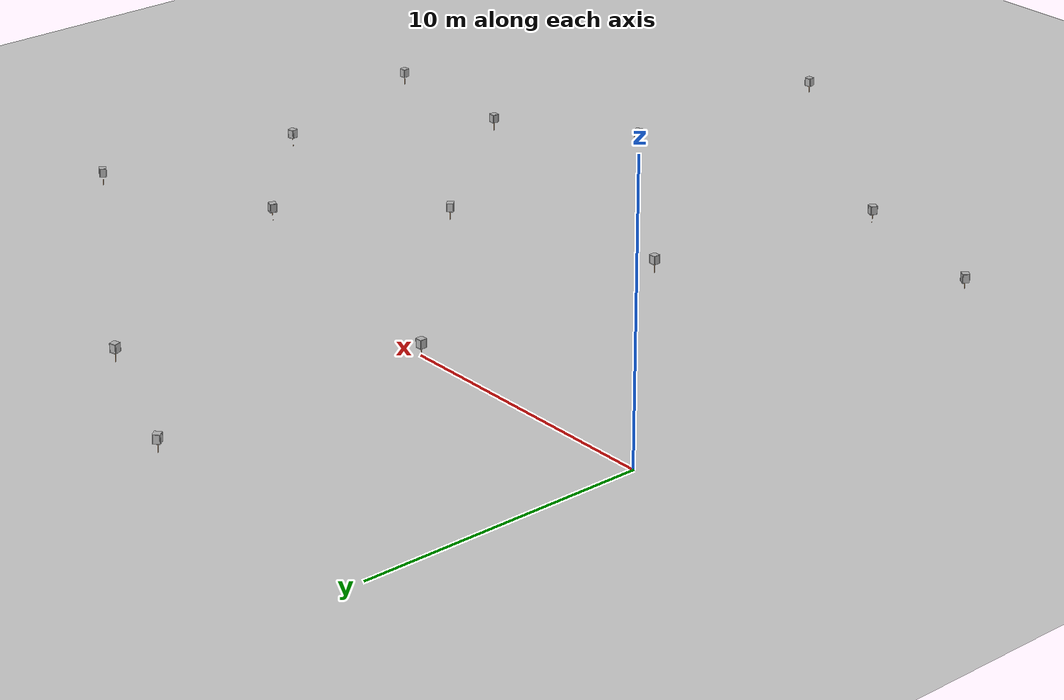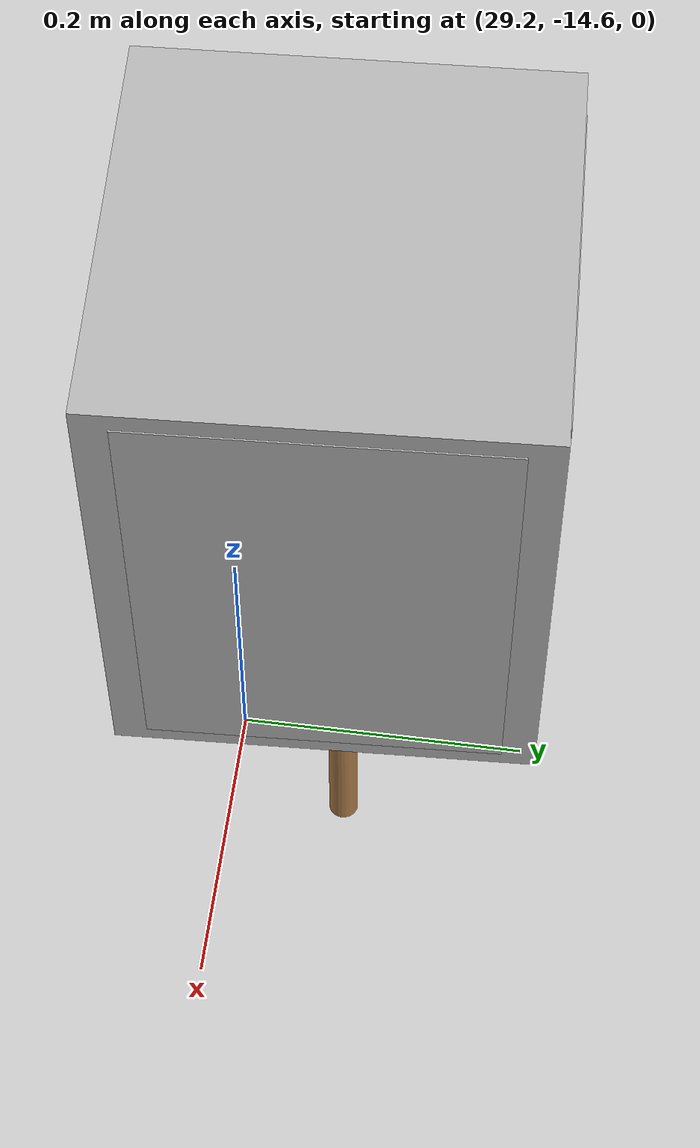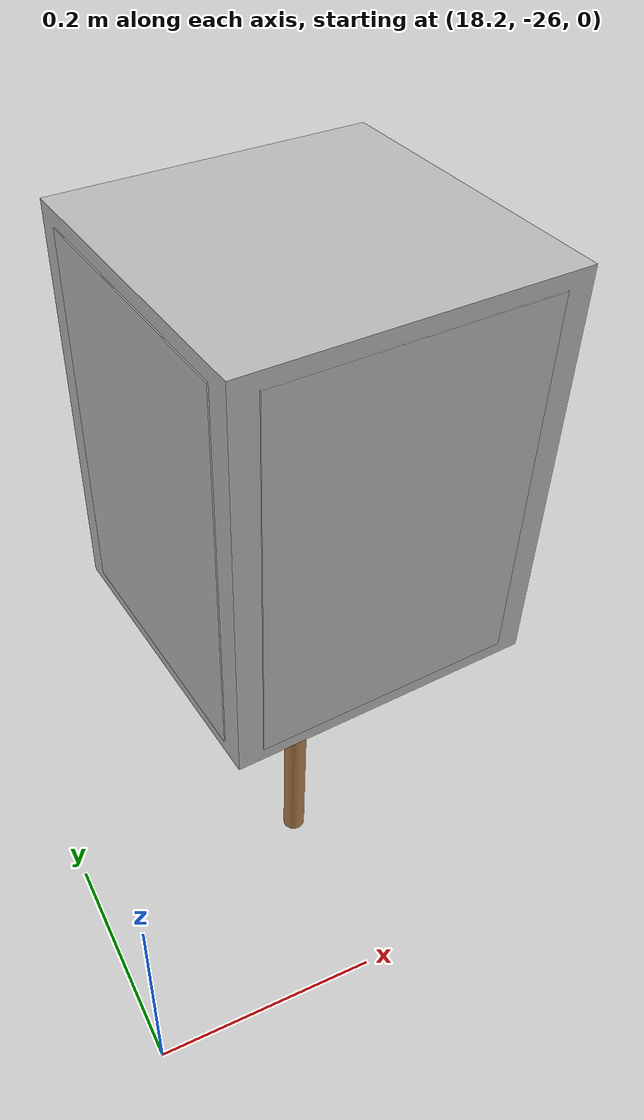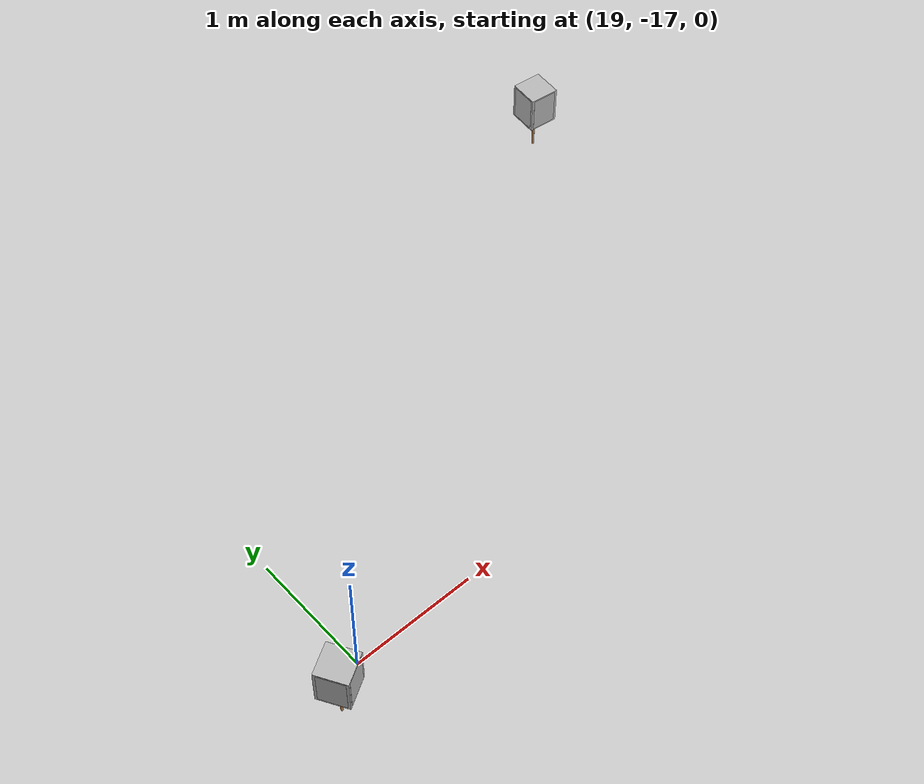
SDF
<?xml version="1.0" ?>
<!-- |    This document was autogenerated by xacro from marsyard2022.world.xacro       | -->
<!-- |    EDITING THIS FILE BY HAND IS NOT RECOMMENDED                                 | -->
<?xml-model href="http://sdformat.org/schemas/root.xsd" schematypens="http://www.w3.org/2001/XMLSchema"?>
<sdf version="1.9">
  <world name="marsyard2022">
    <physics type="ode">
      <ode>
        <solver>
          <!-- IMPORTANT for skid steering to properly work -->
          <friction_model>cone_model</friction_model>
          <island_threads>6</island_threads>
        </solver>
      </ode>
    </physics>
    <light name="sun" type="directional">
      <pose frame="">0 0 100 0 0 0.01</pose>
      <diffuse>1 1 1 1</diffuse>
      <specular>0.1 0.1 0.1 1</specular>
      <cast_shadows>1</cast_shadows>
      <direction>-0.2 -1.0 -1.0</direction>
    </light>
    <scene>
      <ambient>0.6 0.6 0.6 1.0</ambient>
      <sky>
        <clouds>
          <speed>12</speed>
        </clouds>
      </sky>
      <shadows>true</shadows>
      <origin_visual>false</origin_visual>
    </scene>
    <include>
      <uri>model://ground_plane</uri>
    </include>
    <model name="landmark1">
      <pose>10.0 0.0 0 0 0 0.0</pose>
      <static>true</static>
      <link name="landmark">
        <visual name="pole_visual">
          <pose>0 0 0.09999999999999999 0 0 0</pose>
          <geometry>
            <cylinder>
              <radius>0.01</radius>
              <length>0.4</length>
            </cylinder>
          </geometry>
          <material>
            <script>
              <name>Gazebo/Wood</name>
            </script>
          </material>
        </visual>
        <collision name="pole_collision">
          <pose>0 0 0.09999999999999999 0 0 0</pose>
          <geometry>
            <cylinder>
              <radius>0.01</radius>
              <length>0.4</length>
            </cylinder>
          </geometry>
        </collision>
        <visual name="box_visual">
          <pose>0 0 0.45999999999999996 0 0 0</pose>
          <geometry>
            <box>
              <size>0.25 0.25 0.32</size>
            </box>
          </geometry>
          <material>
            <script>
              <name>ERC_Landmark/Box</name>
            </script>
          </material>
        </visual>
        <collision name="box_collision">
          <pose>0 0 0.45999999999999996 0 0 0</pose>
          <geometry>
            <box>
              <size>0.25 0.25 0.32</size>
            </box>
          </geometry>
        </collision>
        <visual name="sheet1">
          <pose>0 0.1235 0.45999999999999996 0 0 0</pose>
          <geometry>
            <box>
              <size>0.21 0.005 0.297</size>
            </box>
          </geometry>
          <material>
            <script>
              <name>ERC_Landmark/1</name>
            </script>
          </material>
        </visual>
        <visual name="sheet2">
          <pose>0 -0.1235 0.45999999999999996 0 0 0</pose>
          <geometry>
            <box>
              <size>0.21 0.005 0.297</size>
            </box>
          </geometry>
          <material>
            <script>
              <name>ERC_Landmark/1</name>
            </script>
          </material>
        </visual>
        <visual name="sheet3">
          <pose>0.1235 0 0.45999999999999996 0 0 1.5707963267948966</pose>
          <geometry>
            <box>
              <size>0.21 0.005 0.297</size>
            </box>
          </geometry>
          <material>
            <script>
              <name>ERC_Landmark/1</name>
            </script>
          </material>
        </visual>
        <visual name="sheet4">
          <pose>-0.1235 0 0.45999999999999996 0 0 1.5707963267948966</pose>
          <geometry>
            <box>
              <size>0.21 0.005 0.297</size>
            </box>
          </geometry>
          <material>
            <script>
              <name>ERC_Landmark/1</name>
            </script>
          </material>
        </visual>
      </link>
    </model>
    <model name="landmark2">
      <pose>10.0 -10.0 0 0 0 0.0</pose>
      <static>true</static>
      <link name="landmark">
        <visual name="pole_visual">
          <pose>0 0 0.09999999999999999 0 0 0</pose>
          <geometry>
            <cylinder>
              <radius>0.01</radius>
              <length>0.4</length>
            </cylinder>
          </geometry>
          <material>
            <script>
              <name>Gazebo/Wood</name>
            </script>
          </material>
        </visual>
        <collision name="pole_collision">
          <pose>0 0 0.09999999999999999 0 0 0</pose>
          <geometry>
            <cylinder>
              <radius>0.01</radius>
              <length>0.4</length>
            </cylinder>
          </geometry>
        </collision>
        <visual name="box_visual">
          <pose>0 0 0.45999999999999996 0 0 0</pose>
          <geometry>
            <box>
              <size>0.25 0.25 0.32</size>
            </box>
          </geometry>
          <material>
            <script>
              <name>ERC_Landmark/Box</name>
            </script>
          </material>
        </visual>
        <collision name="box_collision">
          <pose>0 0 0.45999999999999996 0 0 0</pose>
          <geometry>
            <box>
              <size>0.25 0.25 0.32</size>
            </box>
          </geometry>
        </collision>
        <visual name="sheet1">
          <pose>0 0.1235 0.45999999999999996 0 0 0</pose>
          <geometry>
            <box>
              <size>0.21 0.005 0.297</size>
            </box>
          </geometry>
          <material>
            <script>
              <name>ERC_Landmark/2</name>
            </script>
          </material>
        </visual>
        <visual name="sheet2">
          <pose>0 -0.1235 0.45999999999999996 0 0 0</pose>
          <geometry>
            <box>
              <size>0.21 0.005 0.297</size>
            </box>
          </geometry>
          <material>
            <script>
              <name>ERC_Landmark/2</name>
            </script>
          </material>
        </visual>
        <visual name="sheet3">
          <pose>0.1235 0 0.45999999999999996 0 0 1.5707963267948966</pose>
          <geometry>
            <box>
              <size>0.21 0.005 0.297</size>
            </box>
          </geometry>
          <material>
            <script>
              <name>ERC_Landmark/2</name>
            </script>
          </material>
        </visual>
        <visual name="sheet4">
          <pose>-0.1235 0 0.45999999999999996 0 0 1.5707963267948966</pose>
          <geometry>
            <box>
              <size>0.21 0.005 0.297</size>
            </box>
          </geometry>
          <material>
            <script>
              <name>ERC_Landmark/2</name>
            </script>
          </material>
        </visual>
      </link>
    </model>
    <model name="landmark3">
      <pose>28.35 -0.04 0 0 0 -0.5</pose>
      <static>true</static>
      <link name="landmark">
        <visual name="pole_visual">
          <pose>0 0 0.09999999999999999 0 0 0</pose>
          <geometry>
            <cylinder>
              <radius>0.01</radius>
              <length>0.4</length>
            </cylinder>
          </geometry>
          <material>
            <script>
              <name>Gazebo/Wood</name>
            </script>
          </material>
        </visual>
        <collision name="pole_collision">
          <pose>0 0 0.09999999999999999 0 0 0</pose>
          <geometry>
            <cylinder>
              <radius>0.01</radius>
              <length>0.4</length>
            </cylinder>
          </geometry>
        </collision>
        <visual name="box_visual">
          <pose>0 0 0.45999999999999996 0 0 0</pose>
          <geometry>
            <box>
              <size>0.25 0.25 0.32</size>
            </box>
          </geometry>
          <material>
            <script>
              <name>ERC_Landmark/Box</name>
            </script>
          </material>
        </visual>
        <collision name="box_collision">
          <pose>0 0 0.45999999999999996 0 0 0</pose>
          <geometry>
            <box>
              <size>0.25 0.25 0.32</size>
            </box>
          </geometry>
        </collision>
        <visual name="sheet1">
          <pose>0 0.1235 0.45999999999999996 0 0 0</pose>
          <geometry>
            <box>
              <size>0.21 0.005 0.297</size>
            </box>
          </geometry>
          <material>
            <script>
              <name>ERC_Landmark/3</name>
            </script>
          </material>
        </visual>
        <visual name="sheet2">
          <pose>0 -0.1235 0.45999999999999996 0 0 0</pose>
          <geometry>
            <box>
              <size>0.21 0.005 0.297</size>
            </box>
          </geometry>
          <material>
            <script>
              <name>ERC_Landmark/3</name>
            </script>
          </material>
        </visual>
        <visual name="sheet3">
          <pose>0.1235 0 0.45999999999999996 0 0 1.5707963267948966</pose>
          <geometry>
            <box>
              <size>0.21 0.005 0.297</size>
            </box>
          </geometry>
          <material>
            <script>
              <name>ERC_Landmark/3</name>
            </script>
          </material>
        </visual>
        <visual name="sheet4">
          <pose>-0.1235 0 0.45999999999999996 0 0 1.5707963267948966</pose>
          <geometry>
            <box>
              <size>0.21 0.005 0.297</size>
            </box>
          </geometry>
          <material>
            <script>
              <name>ERC_Landmark/3</name>
            </script>
          </material>
        </visual>
      </link>
    </model>
    <model name="landmark4">
      <pose>21.83 -2.8 0 0 0 -0.29</pose>
      <static>true</static>
      <link name="landmark">
        <visual name="pole_visual">
          <pose>0 0 0.09999999999999999 0 0 0</pose>
          <geometry>
            <cylinder>
              <radius>0.01</radius>
              <length>0.4</length>
            </cylinder>
          </geometry>
          <material>
            <script>
              <name>Gazebo/Wood</name>
            </script>
          </material>
        </visual>
        <collision name="pole_collision">
          <pose>0 0 0.09999999999999999 0 0 0</pose>
          <geometry>
            <cylinder>
              <radius>0.01</radius>
              <length>0.4</length>
            </cylinder>
          </geometry>
        </collision>
        <visual name="box_visual">
          <pose>0 0 0.45999999999999996 0 0 0</pose>
          <geometry>
            <box>
              <size>0.25 0.25 0.32</size>
            </box>
          </geometry>
          <material>
            <script>
              <name>ERC_Landmark/Box</name>
            </script>
          </material>
        </visual>
        <collision name="box_collision">
          <pose>0 0 0.45999999999999996 0 0 0</pose>
          <geometry>
            <box>
              <size>0.25 0.25 0.32</size>
            </box>
          </geometry>
        </collision>
        <visual name="sheet1">
          <pose>0 0.1235 0.45999999999999996 0 0 0</pose>
          <geometry>
            <box>
              <size>0.21 0.005 0.297</size>
            </box>
          </geometry>
          <material>
            <script>
              <name>ERC_Landmark/4</name>
            </script>
          </material>
        </visual>
        <visual name="sheet2">
          <pose>0 -0.1235 0.45999999999999996 0 0 0</pose>
          <geometry>
            <box>
              <size>0.21 0.005 0.297</size>
            </box>
          </geometry>
          <material>
            <script>
              <name>ERC_Landmark/4</name>
            </script>
          </material>
        </visual>
        <visual name="sheet3">
          <pose>0.1235 0 0.45999999999999996 0 0 1.5707963267948966</pose>
          <geometry>
            <box>
              <size>0.21 0.005 0.297</size>
            </box>
          </geometry>
          <material>
            <script>
              <name>ERC_Landmark/4</name>
            </script>
          </material>
        </visual>
        <visual name="sheet4">
          <pose>-0.1235 0 0.45999999999999996 0 0 1.5707963267948966</pose>
          <geometry>
            <box>
              <size>0.21 0.005 0.297</size>
            </box>
          </geometry>
          <material>
            <script>
              <name>ERC_Landmark/4</name>
            </script>
          </material>
        </visual>
      </link>
    </model>
    <model name="landmark5">
      <pose>18.71 -17.19 0 0 0 0.53</pose>
      <static>true</static>
      <link name="landmark">
        <visual name="pole_visual">
          <pose>0 0 0.09999999999999999 0 0 0</pose>
          <geometry>
            <cylinder>
              <radius>0.01</radius>
              <length>0.4</length>
            </cylinder>
          </geometry>
          <material>
            <script>
              <name>Gazebo/Wood</name>
            </script>
          </material>
        </visual>
        <collision name="pole_collision">
          <pose>0 0 0.09999999999999999 0 0 0</pose>
          <geometry>
            <cylinder>
              <radius>0.01</radius>
              <length>0.4</length>
            </cylinder>
          </geometry>
        </collision>
        <visual name="box_visual">
          <pose>0 0 0.45999999999999996 0 0 0</pose>
          <geometry>
            <box>
              <size>0.25 0.25 0.32</size>
            </box>
          </geometry>
          <material>
            <script>
              <name>ERC_Landmark/Box</name>
            </script>
          </material>
        </visual>
        <collision name="box_collision">
          <pose>0 0 0.45999999999999996 0 0 0</pose>
          <geometry>
            <box>
              <size>0.25 0.25 0.32</size>
            </box>
          </geometry>
        </collision>
        <visual name="sheet1">
          <pose>0 0.1235 0.45999999999999996 0 0 0</pose>
          <geometry>
            <box>
              <size>0.21 0.005 0.297</size>
            </box>
          </geometry>
          <material>
            <script>
              <name>ERC_Landmark/5</name>
            </script>
          </material>
        </visual>
        <visual name="sheet2">
          <pose>0 -0.1235 0.45999999999999996 0 0 0</pose>
          <geometry>
            <box>
              <size>0.21 0.005 0.297</size>
            </box>
          </geometry>
          <material>
            <script>
              <name>ERC_Landmark/5</name>
            </script>
          </material>
        </visual>
        <visual name="sheet3">
          <pose>0.1235 0 0.45999999999999996 0 0 1.5707963267948966</pose>
          <geometry>
            <box>
              <size>0.21 0.005 0.297</size>
            </box>
          </geometry>
          <material>
            <script>
              <name>ERC_Landmark/5</name>
            </script>
          </material>
        </visual>
        <visual name="sheet4">
          <pose>-0.1235 0 0.45999999999999996 0 0 1.5707963267948966</pose>
          <geometry>
            <box>
              <size>0.21 0.005 0.297</size>
            </box>
          </geometry>
          <material>
            <script>
              <name>ERC_Landmark/5</name>
            </script>
          </material>
        </visual>
      </link>
    </model>
    <model name="landmark6">
      <pose>26.95 -7.44 0 0 0 -1.35</pose>
      <static>true</static>
      <link name="landmark">
        <visual name="pole_visual">
          <pose>0 0 0.09999999999999999 0 0 0</pose>
          <geometry>
            <cylinder>
              <radius>0.01</radius>
              <length>0.4</length>
            </cylinder>
          </geometry>
          <material>
            <script>
              <name>Gazebo/Wood</name>
            </script>
          </material>
        </visual>
        <collision name="pole_collision">
          <pose>0 0 0.09999999999999999 0 0 0</pose>
          <geometry>
            <cylinder>
              <radius>0.01</radius>
              <length>0.4</length>
            </cylinder>
          </geometry>
        </collision>
        <visual name="box_visual">
          <pose>0 0 0.45999999999999996 0 0 0</pose>
          <geometry>
            <box>
              <size>0.25 0.25 0.32</size>
            </box>
          </geometry>
          <material>
            <script>
              <name>ERC_Landmark/Box</name>
            </script>
          </material>
        </visual>
        <collision name="box_collision">
          <pose>0 0 0.45999999999999996 0 0 0</pose>
          <geometry>
            <box>
              <size>0.25 0.25 0.32</size>
            </box>
          </geometry>
        </collision>
        <visual name="sheet1">
          <pose>0 0.1235 0.45999999999999996 0 0 0</pose>
          <geometry>
            <box>
              <size>0.21 0.005 0.297</size>
            </box>
          </geometry>
          <material>
            <script>
              <name>ERC_Landmark/6</name>
            </script>
          </material>
        </visual>
        <visual name="sheet2">
          <pose>0 -0.1235 0.45999999999999996 0 0 0</pose>
          <geometry>
            <box>
              <size>0.21 0.005 0.297</size>
            </box>
          </geometry>
          <material>
            <script>
              <name>ERC_Landmark/6</name>
            </script>
          </material>
        </visual>
        <visual name="sheet3">
          <pose>0.1235 0 0.45999999999999996 0 0 1.5707963267948966</pose>
          <geometry>
            <box>
              <size>0.21 0.005 0.297</size>
            </box>
          </geometry>
          <material>
            <script>
              <name>ERC_Landmark/6</name>
            </script>
          </material>
        </visual>
        <visual name="sheet4">
          <pose>-0.1235 0 0.45999999999999996 0 0 1.5707963267948966</pose>
          <geometry>
            <box>
              <size>0.21 0.005 0.297</size>
            </box>
          </geometry>
          <material>
            <script>
              <name>ERC_Landmark/6</name>
            </script>
          </material>
        </visual>
      </link>
    </model>
    <model name="landmark7">
      <pose>15.97 7.57 0 0 0 -1.31</pose>
      <static>true</static>
      <link name="landmark">
        <visual name="pole_visual">
          <pose>0 0 0.09999999999999999 0 0 0</pose>
          <geometry>
            <cylinder>
              <radius>0.01</radius>
              <length>0.4</length>
            </cylinder>
          </geometry>
          <material>
            <script>
              <name>Gazebo/Wood</name>
            </script>
          </material>
        </visual>
        <collision name="pole_collision">
          <pose>0 0 0.09999999999999999 0 0 0</pose>
          <geometry>
            <cylinder>
              <radius>0.01</radius>
              <length>0.4</length>
            </cylinder>
          </geometry>
        </collision>
        <visual name="box_visual">
          <pose>0 0 0.45999999999999996 0 0 0</pose>
          <geometry>
            <box>
              <size>0.25 0.25 0.32</size>
            </box>
          </geometry>
          <material>
            <script>
              <name>ERC_Landmark/Box</name>
            </script>
          </material>
        </visual>
        <collision name="box_collision">
          <pose>0 0 0.45999999999999996 0 0 0</pose>
          <geometry>
            <box>
              <size>0.25 0.25 0.32</size>
            </box>
          </geometry>
        </collision>
        <visual name="sheet1">
          <pose>0 0.1235 0.45999999999999996 0 0 0</pose>
          <geometry>
            <box>
              <size>0.21 0.005 0.297</size>
            </box>
          </geometry>
          <material>
            <script>
              <name>ERC_Landmark/7</name>
            </script>
          </material>
        </visual>
        <visual name="sheet2">
          <pose>0 -0.1235 0.45999999999999996 0 0 0</pose>
          <geometry>
            <box>
              <size>0.21 0.005 0.297</size>
            </box>
          </geometry>
          <material>
            <script>
              <name>ERC_Landmark/7</name>
            </script>
          </material>
        </visual>
        <visual name="sheet3">
          <pose>0.1235 0 0.45999999999999996 0 0 1.5707963267948966</pose>
          <geometry>
            <box>
              <size>0.21 0.005 0.297</size>
            </box>
          </geometry>
          <material>
            <script>
              <name>ERC_Landmark/7</name>
            </script>
          </material>
        </visual>
        <visual name="sheet4">
          <pose>-0.1235 0 0.45999999999999996 0 0 1.5707963267948966</pose>
          <geometry>
            <box>
              <size>0.21 0.005 0.297</size>
            </box>
          </geometry>
          <material>
            <script>
              <name>ERC_Landmark/7</name>
            </script>
          </material>
        </visual>
      </link>
    </model>
    <model name="landmark8">
      <pose>17.87 -7.57 0 0 0 -0.79</pose>
      <static>true</static>
      <link name="landmark">
        <visual name="pole_visual">
          <pose>0 0 0.09999999999999999 0 0 0</pose>
          <geometry>
            <cylinder>
              <radius>0.01</radius>
              <length>0.4</length>
            </cylinder>
          </geometry>
          <material>
            <script>
              <name>Gazebo/Wood</name>
            </script>
          </material>
        </visual>
        <collision name="pole_collision">
          <pose>0 0 0.09999999999999999 0 0 0</pose>
          <geometry>
            <cylinder>
              <radius>0.01</radius>
              <length>0.4</length>
            </cylinder>
          </geometry>
        </collision>
        <visual name="box_visual">
          <pose>0 0 0.45999999999999996 0 0 0</pose>
          <geometry>
            <box>
              <size>0.25 0.25 0.32</size>
            </box>
          </geometry>
          <material>
            <script>
              <name>ERC_Landmark/Box</name>
            </script>
          </material>
        </visual>
        <collision name="box_collision">
          <pose>0 0 0.45999999999999996 0 0 0</pose>
          <geometry>
            <box>
              <size>0.25 0.25 0.32</size>
            </box>
          </geometry>
        </collision>
        <visual name="sheet1">
          <pose>0 0.1235 0.45999999999999996 0 0 0</pose>
          <geometry>
            <box>
              <size>0.21 0.005 0.297</size>
            </box>
          </geometry>
          <material>
            <script>
              <name>ERC_Landmark/8</name>
            </script>
          </material>
        </visual>
        <visual name="sheet2">
          <pose>0 -0.1235 0.45999999999999996 0 0 0</pose>
          <geometry>
            <box>
              <size>0.21 0.005 0.297</size>
            </box>
          </geometry>
          <material>
            <script>
              <name>ERC_Landmark/8</name>
            </script>
          </material>
        </visual>
        <visual name="sheet3">
          <pose>0.1235 0 0.45999999999999996 0 0 1.5707963267948966</pose>
          <geometry>
            <box>
              <size>0.21 0.005 0.297</size>
            </box>
          </geometry>
          <material>
            <script>
              <name>ERC_Landmark/8</name>
            </script>
          </material>
        </visual>
        <visual name="sheet4">
          <pose>-0.1235 0 0.45999999999999996 0 0 1.5707963267948966</pose>
          <geometry>
            <box>
              <size>0.21 0.005 0.297</size>
            </box>
          </geometry>
          <material>
            <script>
              <name>ERC_Landmark/8</name>
            </script>
          </material>
        </visual>
      </link>
    </model>
    <model name="landmark9">
      <pose>10.0 10.0 0 0 0 -0.9</pose>
      <static>true</static>
      <link name="landmark">
        <visual name="pole_visual">
          <pose>0 0 0.09999999999999999 0 0 0</pose>
          <geometry>
            <cylinder>
              <radius>0.01</radius>
              <length>0.4</length>
            </cylinder>
          </geometry>
          <material>
            <script>
              <name>Gazebo/Wood</name>
            </script>
          </material>
        </visual>
        <collision name="pole_collision">
          <pose>0 0 0.09999999999999999 0 0 0</pose>
          <geometry>
            <cylinder>
              <radius>0.01</radius>
              <length>0.4</length>
            </cylinder>
          </geometry>
        </collision>
        <visual name="box_visual">
          <pose>0 0 0.45999999999999996 0 0 0</pose>
          <geometry>
            <box>
              <size>0.25 0.25 0.32</size>
            </box>
          </geometry>
          <material>
            <script>
              <name>ERC_Landmark/Box</name>
            </script>
          </material>
        </visual>
        <collision name="box_collision">
          <pose>0 0 0.45999999999999996 0 0 0</pose>
          <geometry>
            <box>
              <size>0.25 0.25 0.32</size>
            </box>
          </geometry>
        </collision>
        <visual name="sheet1">
          <pose>0 0.1235 0.45999999999999996 0 0 0</pose>
          <geometry>
            <box>
              <size>0.21 0.005 0.297</size>
            </box>
          </geometry>
          <material>
            <script>
              <name>ERC_Landmark/9</name>
            </script>
          </material>
        </visual>
        <visual name="sheet2">
          <pose>0 -0.1235 0.45999999999999996 0 0 0</pose>
          <geometry>
            <box>
              <size>0.21 0.005 0.297</size>
            </box>
          </geometry>
          <material>
            <script>
              <name>ERC_Landmark/9</name>
            </script>
          </material>
        </visual>
        <visual name="sheet3">
          <pose>0.1235 0 0.45999999999999996 0 0 1.5707963267948966</pose>
          <geometry>
            <box>
              <size>0.21 0.005 0.297</size>
            </box>
          </geometry>
          <material>
            <script>
              <name>ERC_Landmark/9</name>
            </script>
          </material>
        </visual>
        <visual name="sheet4">
          <pose>-0.1235 0 0.45999999999999996 0 0 1.5707963267948966</pose>
          <geometry>
            <box>
              <size>0.21 0.005 0.297</size>
            </box>
          </geometry>
          <material>
            <script>
              <name>ERC_Landmark/9</name>
            </script>
          </material>
        </visual>
      </link>
    </model>
    <model name="landmark10">
      <pose>29.26 -14.52 0 0 0 -1.52</pose>
      <static>true</static>
      <link name="landmark">
        <visual name="pole_visual">
          <pose>0 0 0.09999999999999999 0 0 0</pose>
          <geometry>
            <cylinder>
              <radius>0.01</radius>
              <length>0.4</length>
            </cylinder>
          </geometry>
          <material>
            <script>
              <name>Gazebo/Wood</name>
            </script>
          </material>
        </visual>
        <collision name="pole_collision">
          <pose>0 0 0.09999999999999999 0 0 0</pose>
          <geometry>
            <cylinder>
              <radius>0.01</radius>
              <length>0.4</length>
            </cylinder>
          </geometry>
        </collision>
        <visual name="box_visual">
          <pose>0 0 0.45999999999999996 0 0 0</pose>
          <geometry>
            <box>
              <size>0.25 0.25 0.32</size>
            </box>
          </geometry>
          <material>
            <script>
              <name>ERC_Landmark/Box</name>
            </script>
          </material>
        </visual>
        <collision name="box_collision">
          <pose>0 0 0.45999999999999996 0 0 0</pose>
          <geometry>
            <box>
              <size>0.25 0.25 0.32</size>
            </box>
          </geometry>
        </collision>
        <visual name="sheet1">
          <pose>0 0.1235 0.45999999999999996 0 0 0</pose>
          <geometry>
            <box>
              <size>0.21 0.005 0.297</size>
            </box>
          </geometry>
          <material>
            <script>
              <name>ERC_Landmark/10</name>
            </script>
          </material>
        </visual>
        <visual name="sheet2">
          <pose>0 -0.1235 0.45999999999999996 0 0 0</pose>
          <geometry>
            <box>
              <size>0.21 0.005 0.297</size>
            </box>
          </geometry>
          <material>
            <script>
              <name>ERC_Landmark/10</name>
            </script>
          </material>
        </visual>
        <visual name="sheet3">
          <pose>0.1235 0 0.45999999999999996 0 0 1.5707963267948966</pose>
          <geometry>
            <box>
              <size>0.21 0.005 0.297</size>
            </box>
          </geometry>
          <material>
            <script>
              <name>ERC_Landmark/10</name>
            </script>
          </material>
        </visual>
        <visual name="sheet4">
          <pose>-0.1235 0 0.45999999999999996 0 0 1.5707963267948966</pose>
          <geometry>
            <box>
              <size>0.21 0.005 0.297</size>
            </box>
          </geometry>
          <material>
            <script>
              <name>ERC_Landmark/10</name>
            </script>
          </material>
        </visual>
      </link>
    </model>
    <model name="landmark11">
      <pose>18.41 -25.83 0 0 0 0.08</pose>
      <static>true</static>
      <link name="landmark">
        <visual name="pole_visual">
          <pose>0 0 0.09999999999999999 0 0 0</pose>
          <geometry>
            <cylinder>
              <radius>0.01</radius>
              <length>0.4</length>
            </cylinder>
          </geometry>
          <material>
            <script>
              <name>Gazebo/Wood</name>
            </script>
          </material>
        </visual>
        <collision name="pole_collision">
          <pose>0 0 0.09999999999999999 0 0 0</pose>
          <geometry>
            <cylinder>
              <radius>0.01</radius>
              <length>0.4</length>
            </cylinder>
          </geometry>
        </collision>
        <visual name="box_visual">
          <pose>0 0 0.45999999999999996 0 0 0</pose>
          <geometry>
            <box>
              <size>0.25 0.25 0.32</size>
            </box>
          </geometry>
          <material>
            <script>
              <name>ERC_Landmark/Box</name>
            </script>
          </material>
        </visual>
        <collision name="box_collision">
          <pose>0 0 0.45999999999999996 0 0 0</pose>
          <geometry>
            <box>
              <size>0.25 0.25 0.32</size>
            </box>
          </geometry>
        </collision>
        <visual name="sheet1">
          <pose>0 0.1235 0.45999999999999996 0 0 0</pose>
          <geometry>
            <box>
              <size>0.21 0.005 0.297</size>
            </box>
          </geometry>
          <material>
            <script>
              <name>ERC_Landmark/11</name>
            </script>
          </material>
        </visual>
        <visual name="sheet2">
          <pose>0 -0.1235 0.45999999999999996 0 0 0</pose>
          <geometry>
            <box>
              <size>0.21 0.005 0.297</size>
            </box>
          </geometry>
          <material>
            <script>
              <name>ERC_Landmark/11</name>
            </script>
          </material>
        </visual>
        <visual name="sheet3">
          <pose>0.1235 0 0.45999999999999996 0 0 1.5707963267948966</pose>
          <geometry>
            <box>
              <size>0.21 0.005 0.297</size>
            </box>
          </geometry>
          <material>
            <script>
              <name>ERC_Landmark/11</name>
            </script>
          </material>
        </visual>
        <visual name="sheet4">
          <pose>-0.1235 0 0.45999999999999996 0 0 1.5707963267948966</pose>
          <geometry>
            <box>
              <size>0.21 0.005 0.297</size>
            </box>
          </geometry>
          <material>
            <script>
              <name>ERC_Landmark/11</name>
            </script>
          </material>
        </visual>
      </link>
    </model>
    <model name="landmark12">
      <pose>23.34 -14.11 0 0 0 -0.1</pose>
      <static>true</static>
      <link name="landmark">
        <visual name="pole_visual">
          <pose>0 0 0.09999999999999999 0 0 0</pose>
          <geometry>
            <cylinder>
              <radius>0.01</radius>
              <length>0.4</length>
            </cylinder>
          </geometry>
          <material>
            <script>
              <name>Gazebo/Wood</name>
            </script>
          </material>
        </visual>
        <collision name="pole_collision">
          <pose>0 0 0.09999999999999999 0 0 0</pose>
          <geometry>
            <cylinder>
              <radius>0.01</radius>
              <length>0.4</length>
            </cylinder>
          </geometry>
        </collision>
        <visual name="box_visual">
          <pose>0 0 0.45999999999999996 0 0 0</pose>
          <geometry>
            <box>
              <size>0.25 0.25 0.32</size>
            </box>
          </geometry>
          <material>
            <script>
              <name>ERC_Landmark/Box</name>
            </script>
          </material>
        </visual>
        <collision name="box_collision">
          <pose>0 0 0.45999999999999996 0 0 0</pose>
          <geometry>
            <box>
              <size>0.25 0.25 0.32</size>
            </box>
          </geometry>
        </collision>
        <visual name="sheet1">
          <pose>0 0.1235 0.45999999999999996 0 0 0</pose>
          <geometry>
            <box>
              <size>0.21 0.005 0.297</size>
            </box>
          </geometry>
          <material>
            <script>
              <name>ERC_Landmark/12</name>
            </script>
          </material>
        </visual>
        <visual name="sheet2">
          <pose>0 -0.1235 0.45999999999999996 0 0 0</pose>
          <geometry>
            <box>
              <size>0.21 0.005 0.297</size>
            </box>
          </geometry>
          <material>
            <script>
              <name>ERC_Landmark/12</name>
            </script>
          </material>
        </visual>
        <visual name="sheet3">
          <pose>0.1235 0 0.45999999999999996 0 0 1.5707963267948966</pose>
          <geometry>
            <box>
              <size>0.21 0.005 0.297</size>
            </box>
          </geometry>
          <material>
            <script>
              <name>ERC_Landmark/12</name>
            </script>
          </material>
        </visual>
        <visual name="sheet4">
          <pose>-0.1235 0 0.45999999999999996 0 0 1.5707963267948966</pose>
          <geometry>
            <box>
              <size>0.21 0.005 0.297</size>
            </box>
          </geometry>
          <material>
            <script>
              <name>ERC_Landmark/12</name>
            </script>
          </material>
        </visual>
      </link>
    </model>
    <model name="landmark13">
      <pose>8.18 -18.63 0 0 0 -0.4</pose>
      <static>true</static>
      <link name="landmark">
        <visual name="pole_visual">
          <pose>0 0 0.09999999999999999 0 0 0</pose>
          <geometry>
            <cylinder>
              <radius>0.01</radius>
              <length>0.4</length>
            </cylinder>
          </geometry>
          <material>
            <script>
              <name>Gazebo/Wood</name>
            </script>
          </material>
        </visual>
        <collision name="pole_collision">
          <pose>0 0 0.09999999999999999 0 0 0</pose>
          <geometry>
            <cylinder>
              <radius>0.01</radius>
              <length>0.4</length>
            </cylinder>
          </geometry>
        </collision>
        <visual name="box_visual">
          <pose>0 0 0.45999999999999996 0 0 0</pose>
          <geometry>
            <box>
              <size>0.25 0.25 0.32</size>
            </box>
          </geometry>
          <material>
            <script>
              <name>ERC_Landmark/Box</name>
            </script>
          </material>
        </visual>
        <collision name="box_collision">
          <pose>0 0 0.45999999999999996 0 0 0</pose>
          <geometry>
            <box>
              <size>0.25 0.25 0.32</size>
            </box>
          </geometry>
        </collision>
        <visual name="sheet1">
          <pose>0 0.1235 0.45999999999999996 0 0 0</pose>
          <geometry>
            <box>
              <size>0.21 0.005 0.297</size>
            </box>
          </geometry>
          <material>
            <script>
              <name>ERC_Landmark/13</name>
            </script>
          </material>
        </visual>
        <visual name="sheet2">
          <pose>0 -0.1235 0.45999999999999996 0 0 0</pose>
          <geometry>
            <box>
              <size>0.21 0.005 0.297</size>
            </box>
          </geometry>
          <material>
            <script>
              <name>ERC_Landmark/13</name>
            </script>
          </material>
        </visual>
        <visual name="sheet3">
          <pose>0.1235 0 0.45999999999999996 0 0 1.5707963267948966</pose>
          <geometry>
            <box>
              <size>0.21 0.005 0.297</size>
            </box>
          </geometry>
          <material>
            <script>
              <name>ERC_Landmark/13</name>
            </script>
          </material>
        </visual>
        <visual name="sheet4">
          <pose>-0.1235 0 0.45999999999999996 0 0 1.5707963267948966</pose>
          <geometry>
            <box>
              <size>0.21 0.005 0.297</size>
            </box>
          </geometry>
          <material>
            <script>
              <name>ERC_Landmark/13</name>
            </script>
          </material>
        </visual>
      </link>
    </model>
    <model name="landmark15">
      <pose>2.27 -16.84 0 0 0 -0.56</pose>
      <static>true</static>
      <link name="landmark">
        <visual name="pole_visual">
          <pose>0 0 0.09999999999999999 0 0 0</pose>
          <geometry>
            <cylinder>
              <radius>0.01</radius>
              <length>0.4</length>
            </cylinder>
          </geometry>
          <material>
            <script>
              <name>Gazebo/Wood</name>
            </script>
          </material>
        </visual>
        <collision name="pole_collision">
          <pose>0 0 0.09999999999999999 0 0 0</pose>
          <geometry>
            <cylinder>
              <radius>0.01</radius>
              <length>0.4</length>
            </cylinder>
          </geometry>
        </collision>
        <visual name="box_visual">
          <pose>0 0 0.45999999999999996 0 0 0</pose>
          <geometry>
            <box>
              <size>0.25 0.25 0.32</size>
            </box>
          </geometry>
          <material>
            <script>
              <name>ERC_Landmark/Box</name>
            </script>
          </material>
        </visual>
        <collision name="box_collision">
          <pose>0 0 0.45999999999999996 0 0 0</pose>
          <geometry>
            <box>
              <size>0.25 0.25 0.32</size>
            </box>
          </geometry>
        </collision>
        <visual name="sheet1">
          <pose>0 0.1235 0.45999999999999996 0 0 0</pose>
          <geometry>
            <box>
              <size>0.21 0.005 0.297</size>
            </box>
          </geometry>
          <material>
            <script>
              <name>ERC_Landmark/15</name>
            </script>
          </material>
        </visual>
        <visual name="sheet2">
          <pose>0 -0.1235 0.45999999999999996 0 0 0</pose>
          <geometry>
            <box>
              <size>0.21 0.005 0.297</size>
            </box>
          </geometry>
          <material>
            <script>
              <name>ERC_Landmark/15</name>
            </script>
          </material>
        </visual>
        <visual name="sheet3">
          <pose>0.1235 0 0.45999999999999996 0 0 1.5707963267948966</pose>
          <geometry>
            <box>
              <size>0.21 0.005 0.297</size>
            </box>
          </geometry>
          <material>
            <script>
              <name>ERC_Landmark/15</name>
            </script>
          </material>
        </visual>
        <visual name="sheet4">
          <pose>-0.1235 0 0.45999999999999996 0 0 1.5707963267948966</pose>
          <geometry>
            <box>
              <size>0.21 0.005 0.297</size>
            </box>
          </geometry>
          <material>
            <script>
              <name>ERC_Landmark/15</name>
            </script>
          </material>
        </visual>
      </link>
    </model>
  </world>
</sdf>
